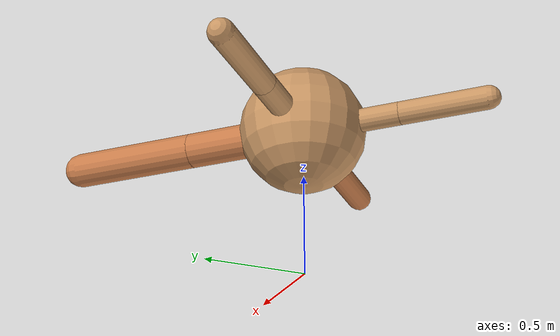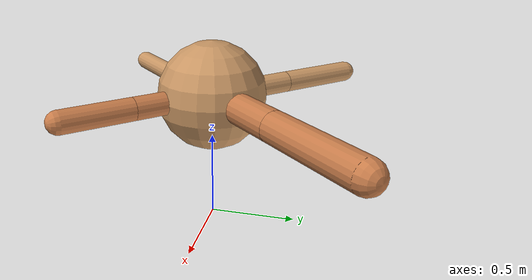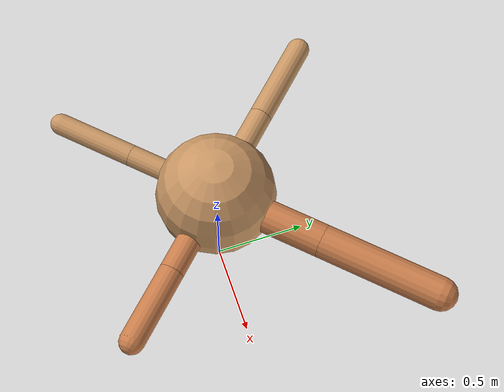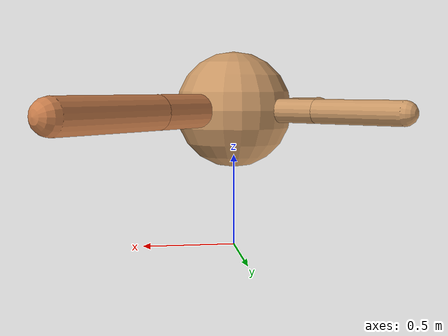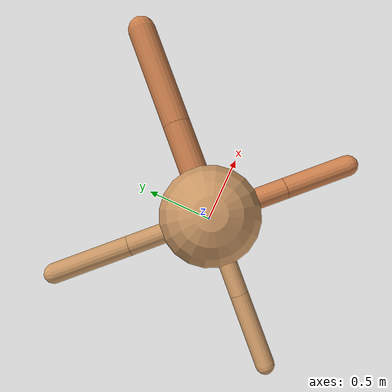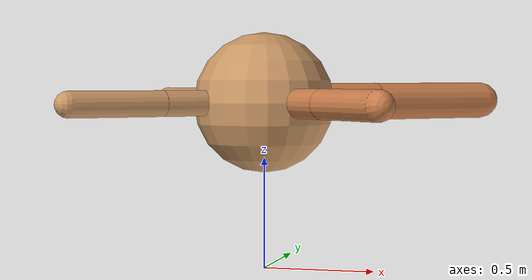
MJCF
<?xml version="1.0" ?>
<mujoco model="ant">

	<compiler angle="degree" coordinate="local" inertiafromgeom="true"/>

	<option integrator="RK4" timestep="0.01"/>

	<custom>

		<numeric data="0.0 0.0 0.55 1.0 0.0 0.0 0.0 0.0 1.0 0.0 -1.0 0.0 -1.0 0.0 1.0" name="init_qpos"/>

	</custom>

	<default>

		<joint armature="1" damping="1" limited="true"/>

		<geom conaffinity="0" condim="3" density="5.0" friction="1.5 0.1 0.1" margin="0.01" rgba="0.8 0.6 0.4 1"/>

	</default>

	<worldbody>

		<body name="torso" pos="0 0 0.75">

			<geom name="torso_geom" pos="0 0 0" size="0.3145708740476545" type="sphere"/>

			<!--joint armature="0" damping="0" limited="false" margin="0.01" name="root" pos="0 0 0" type="free"/-->

			<body name="front_left_leg" pos="0 0 0">

				<geom fromto="0 0 0 0.2 0.2 0" name="aux_1_geom" size="0.08760000659715024" type="capsule" rgba=".8 .5 .3 1"/>

				<body name="aux_1" pos="0.2 0.2 0">

					<joint axis="0 0 1" name="hip_1" pos="0.0 0.0 0.0" range="-40 40" type="hinge"/>

					<geom fromto="0 0 0 0.22742956894504296 0.22742956894504296 0" name="left_leg_geom" size="0.08760000659715024" type="capsule" rgba=".8 .5 .3 1"/>

					<body pos="0.22742956894504296 0.22742956894504296 0" name="front_left_foot">

						<joint axis="-1 1 0" name="ankle_1" pos="0.0 0.0 0.0" range="30 100" type="hinge"/>

						<geom fromto="0 0 0 0.4548591378900859 0.4548591378900859 0" name="left_ankle_geom" size="0.08760000659715024" type="capsule" rgba=".8 .5 .3 1"/>

					</body>

				</body>

			</body>

			<body name="front_right_leg" pos="0 0 0">

				<geom fromto="0 0 0 -0.2 0.2 0" name="aux_2_geom" size="0.062418029236800496" type="capsule"/>

				<body name="aux_2" pos="-0.2 0.2 0">

					<joint axis="0 0 1" name="hip_2" pos="0.0 0.0 0.0" range="-40 40" type="hinge"/>

					<geom fromto="0 0 0 -0.16786662004404632 0.16786662004404632 0" name="right_leg_geom" size="0.062418029236800496" type="capsule"/>

					<body pos="-0.16786662004404632 0.16786662004404632 0" name="front_right_foot">

						<joint axis="1 1 0" name="ankle_2" pos="0.0 0.0 0.0" range="-100 -30" type="hinge"/>

						<geom fromto="0 0 0 -0.33573324008809263 0.33573324008809263 0" name="right_ankle_geom" size="0.062418029236800496" type="capsule"/>

					</body>

				</body>

			</body>

			<body name="left_back_leg" pos="0 0 0">

				<geom fromto="0 0 0 -0.2 -0.2 0" name="aux_3_geom" size="0.057159380772336274" type="capsule"/>

				<body name="aux_3" pos="-0.2 -0.2 0">

					<joint axis="0 0 1" name="hip_3" pos="0.0 0.0 0.0" range="-40 40" type="hinge"/>

					<geom fromto="0 0 0 -0.15241454990766834 -0.15241454990766834 0" name="back_leg_geom" size="0.057159380772336274" type="capsule"/>

					<body pos="-0.15241454990766834 -0.15241454990766834 0" name="left_back_foot">

						<joint axis="-1 1 0" name="ankle_3" pos="0.0 0.0 0.0" range="-100 -30" type="hinge"/>

						<geom fromto="0 0 0 -0.3048290998153367 -0.3048290998153367 0" name="third_ankle_geom" size="0.057159380772336274" type="capsule"/>

					</body>

				</body>

			</body>

			<body name="right_back_leg" pos="0 0 0">

				<geom fromto="0 0 0 0.2 -0.2 0" name="aux_4_geom" size="0.06548716370065806" type="capsule" rgba=".8 .5 .3 1"/>

				<body name="aux_4" pos="0.2 -0.2 0">

					<joint axis="0 0 1" name="hip_4" pos="0.0 0.0 0.0" range="-40 40" type="hinge"/>

					<geom fromto="0 0 0 0.14417004792232455 -0.14417004792232455 0" name="rightback_leg_geom" size="0.06548716370065806" type="capsule" rgba=".8 .5 .3 1"/>

					<body pos="0.14417004792232455 -0.14417004792232455 0" name="right_back_foot">

						<joint axis="1 1 0" name="ankle_4" pos="0.0 0.0 0.0" range="30 100" type="hinge"/>

						<geom fromto="0 0 0 0.2883400958446491 -0.2883400958446491 0" name="fourth_ankle_geom" size="0.06548716370065806" type="capsule" rgba=".8 .5 .3 1"/>

					</body>

				</body>

			</body>

		</body>

	</worldbody>

	<actuator>

		<motor ctrllimited="true" ctrlrange="-1.0 1.0" joint="hip_4" gear="150"/>

		<motor ctrllimited="true" ctrlrange="-1.0 1.0" joint="ankle_4" gear="150"/>

		<motor ctrllimited="true" ctrlrange="-1.0 1.0" joint="hip_1" gear="150"/>

		<motor ctrllimited="true" ctrlrange="-1.0 1.0" joint="ankle_1" gear="150"/>

		<motor ctrllimited="true" ctrlrange="-1.0 1.0" joint="hip_2" gear="150"/>

		<motor ctrllimited="true" ctrlrange="-1.0 1.0" joint="ankle_2" gear="150"/>

		<motor ctrllimited="true" ctrlrange="-1.0 1.0" joint="hip_3" gear="150"/>

		<motor ctrllimited="true" ctrlrange="-1.0 1.0" joint="ankle_3" gear="150"/>

	</actuator>

</mujoco>
